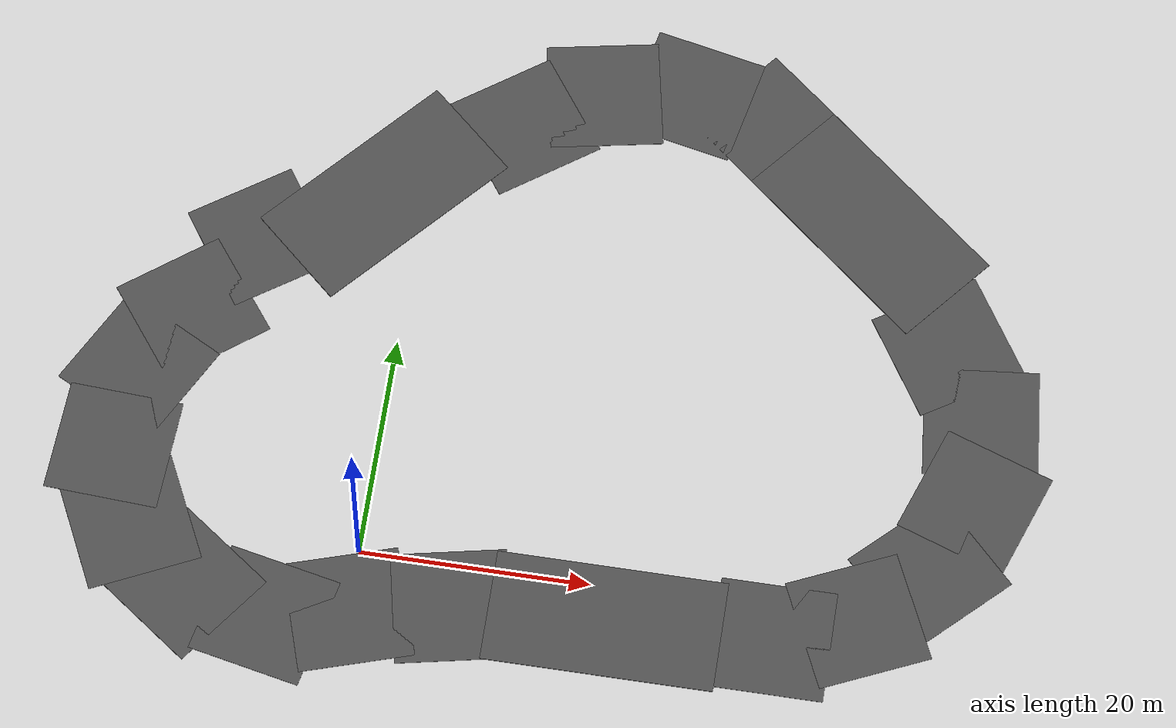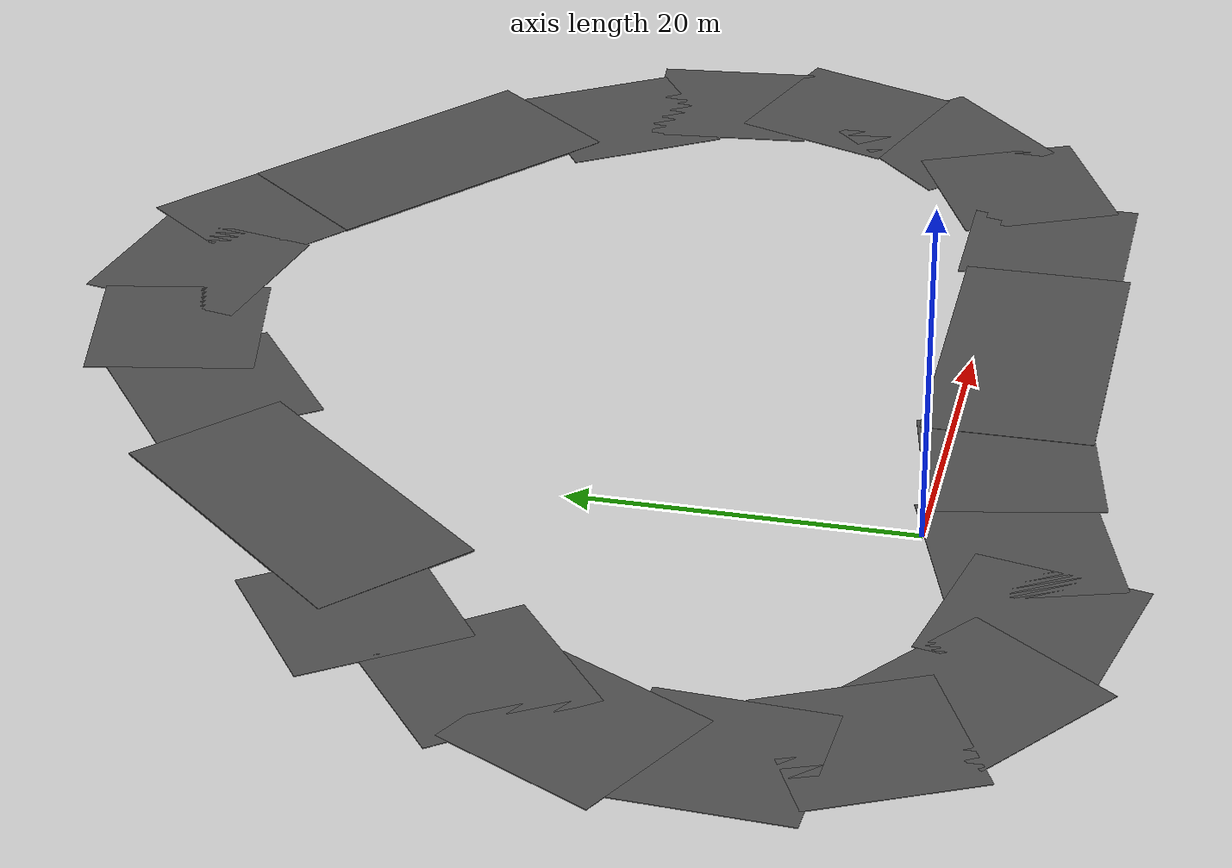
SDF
<sdf version="1.5">
 <world name="default">
  <light name="sun" type="directional">
   <pose>0 0 10 0 -0 0</pose>
   <diffuse>0.8 0.8 0.8 1</diffuse>
   <specular>0.2 0.2 0.2 1</specular>
   <attenuation>
    <range>1000</range>
    <constant>0.9</constant>
    <linear>0.01</linear>
    <quadratic>0.001</quadratic>
   </attenuation>
   <direction>-0.5 0.1 -0.9</direction>
  </light>
  <model name="ground_plane">
   <static>1</static>
   <link name="link">
    <collision name="collision">
     <geometry><plane><normal>0 0 1</normal><size>100 100</size></plane></geometry>
     <surface>
      <contact><collide_bitmask>65535</collide_bitmask></contact>
      <friction><ode><mu>100</mu><mu2>50</mu2></ode></friction>
     </surface>
    </collision>
    <visual name="visual">
     <cast_shadows>0</cast_shadows>
     <geometry><plane><normal>0 0 1</normal><size>100 100</size></plane></geometry>
     <material>
      <script><uri>file://media/materials/scripts/gazebo.material</uri><name>Gazebo/Grey</name></script>
     </material>
    </visual>
   </link>
  </model>
  <physics name="default_physics" default="0" type="ode">
   <max_step_size>0.001</max_step_size>
   <real_time_factor>1</real_time_factor>
   <real_time_update_rate>1000</real_time_update_rate>
   <gravity>0 0 -9.8</gravity>
   <magnetic_field>6e-06 2.3e-05 -4.2e-05</magnetic_field>
  </physics>
  <scene><ambient>0.4 0.4 0.4 1</ambient><background>0.7 0.7 0.7 1</background><shadows>1</shadows></scene>
  <audio><device>default</device></audio>
  <spherical_coordinates>
   <surface_model>EARTH_WGS84</surface_model>
   <latitude_deg>0</latitude_deg>
   <longitude_deg>0</longitude_deg>
   <elevation>0</elevation>
   <heading_deg>0</heading_deg>
  </spherical_coordinates>
  <model name="curved_road_4_0">
   <static>1</static>
   <link name="link">
    <collision name="collision"><geometry><box><size>20 10 0.1</size></box></geometry></collision>
    <visual name="visual">
     <cast_shadows>0</cast_shadows>
     <geometry><box><size>20 10 0.1</size></box></geometry>
     <material>
      <script>
       <uri>model://curved_road_4/materials/scripts</uri>
       <uri>model://curved_road_4/materials/textures</uri>
       <name>curved_road_4</name>
      </script>
     </material>
    </visual>
   </link>
   <pose>21.6759 -3.07883 0 0 -0 0</pose>
  </model>
  <model name="curved_road">
   <static>1</static>
   <link name="link">
    <collision name="collision"><geometry><box><size>10 10 0.05</size></box></geometry></collision>
    <visual name="visual">
     <cast_shadows>0</cast_shadows>
     <geometry><box><size>10 10 0.05</size></box></geometry>
     <material>
      <script>
       <uri>model://curved_road/materials/scripts</uri>
       <uri>model://curved_road/materials/textures</uri>
       <name>curved_road</name>
      </script>
     </material>
    </visual>
   </link>
   <pose>36 -2.59961 0 0 -0 0</pose>
  </model>
  <model name="curved_road_4_1">
   <static>1</static>
   <link name="link">
    <collision name="collision"><geometry><box><size>20 10 0.1</size></box></geometry></collision>
    <visual name="visual">
     <cast_shadows>0</cast_shadows>
     <geometry><box><size>20 10 0.1</size></box></geometry>
     <material>
      <script>
       <uri>model://curved_road_4/materials/scripts</uri>
       <uri>model://curved_road_4/materials/textures</uri>
       <name>curved_road_4</name>
      </script>
     </material>
    </visual>
   </link>
   <pose>39.1891 37.8303 0 0 0 -0.691738</pose>
  </model>
  <model name="curved_road_0">
   <static>1</static>
   <link name="link">
    <collision name="collision"><geometry><box><size>10 10 0.05</size></box></geometry></collision>
    <visual name="visual">
     <cast_shadows>0</cast_shadows>
     <geometry><box><size>10 10 0.05</size></box></geometry>
     <material>
      <script>
       <uri>model://curved_road/materials/scripts</uri>
       <uri>model://curved_road/materials/textures</uri>
       <name>curved_road</name>
      </script>
     </material>
    </visual>
   </link>
   <pose>43.0275 0.196222 0 0 -0 0.428357</pose>
  </model>
  <model name="curved_road_1">
   <static>1</static>
   <link name="link">
    <collision name="collision"><geometry><box><size>10 10 0.05</size></box></geometry></collision>
    <visual name="visual">
     <cast_shadows>0</cast_shadows>
     <geometry><box><size>10 10 0.05</size></box></geometry>
     <material>
      <script>
       <uri>model://curved_road/materials/scripts</uri>
       <uri>model://curved_road/materials/textures</uri>
       <name>curved_road</name>
      </script>
     </material>
    </visual>
   </link>
   <pose>48.4883 5.62534 0 0 -0 0.773568</pose>
  </model>
  <model name="curved_road_5">
   <static>1</static>
   <link name="link">
    <collision name="collision"><geometry><box><size>10 10 0.05</size></box></geometry></collision>
    <visual name="visual">
     <cast_shadows>0</cast_shadows>
     <geometry><box><size>10 10 0.05</size></box></geometry>
     <material>
      <script>
       <uri>model://curved_road/materials/scripts</uri>
       <uri>model://curved_road/materials/textures</uri>
       <name>curved_road</name>
      </script>
     </material>
    </visual>
   </link>
   <pose>51.5505 12.6244 0 0 -0 1.23352</pose>
  </model>
  <model name="curved_road_6">
   <static>1</static>
   <link name="link">
    <collision name="collision"><geometry><box><size>10 10 0.05</size></box></geometry></collision>
    <visual name="visual">
     <cast_shadows>0</cast_shadows>
     <geometry><box><size>10 10 0.05</size></box></geometry>
     <material>
      <script>
       <uri>model://curved_road/materials/scripts</uri>
       <uri>model://curved_road/materials/textures</uri>
       <name>curved_road</name>
      </script>
     </material>
    </visual>
   </link>
   <pose>51.1673 20.1299 0 0 -0 1.67198</pose>
  </model>
  <model name="curved_road_7">
   <static>1</static>
   <link name="link">
    <collision name="collision"><geometry><box><size>10 10 0.05</size></box></geometry></collision>
    <visual name="visual">
     <cast_shadows>0</cast_shadows>
     <geometry><box><size>10 10 0.05</size></box></geometry>
     <material>
      <script>
       <uri>model://curved_road/materials/scripts</uri>
       <uri>model://curved_road/materials/textures</uri>
       <name>curved_road</name>
      </script>
     </material>
    </visual>
   </link>
   <pose>47.4445 26.9404 0 0 -0 2.13415</pose>
  </model>
  <model name="curved_road_8">
   <static>1</static>
   <link name="link">
    <collision name="collision"><geometry><box><size>10 10 0.05</size></box></geometry></collision>
    <visual name="visual">
     <cast_shadows>0</cast_shadows>
     <geometry><box><size>10 10 0.05</size></box></geometry>
     <material>
      <script>
       <uri>model://curved_road/materials/scripts</uri>
       <uri>model://curved_road/materials/textures</uri>
       <name>curved_road</name>
      </script>
     </material>
    </visual>
   </link>
   <pose>29.4939 45.8757 0 0 -0 2.45445</pose>
  </model>
  <model name="curved_road_9">
   <static>1</static>
   <link name="link">
    <collision name="collision"><geometry><box><size>10 10 0.05</size></box></geometry></collision>
    <visual name="visual">
     <cast_shadows>0</cast_shadows>
     <geometry><box><size>10 10 0.05</size></box></geometry>
     <material>
      <script>
       <uri>model://curved_road/materials/scripts</uri>
       <uri>model://curved_road/materials/textures</uri>
       <name>curved_road</name>
      </script>
     </material>
    </visual>
   </link>
   <pose>22.0497 47.9981 0 0 -0 2.93568</pose>
  </model>
  <model name="curved_road_10">
   <static>1</static>
   <link name="link">
    <collision name="collision"><geometry><box><size>10 10 0.05</size></box></geometry></collision>
    <visual name="visual">
     <cast_shadows>0</cast_shadows>
     <geometry><box><size>10 10 0.05</size></box></geometry>
     <material>
      <script>
       <uri>model://curved_road/materials/scripts</uri>
       <uri>model://curved_road/materials/textures</uri>
       <name>curved_road</name>
      </script>
     </material>
    </visual>
   </link>
   <pose>14.2172 46.8196 0 0 0 -2.95461</pose>
  </model>
  <model name="curved_road_11">
   <static>1</static>
   <link name="link">
    <collision name="collision"><geometry><box><size>10 10 0.05</size></box></geometry></collision>
    <visual name="visual">
     <cast_shadows>0</cast_shadows>
     <geometry><box><size>10 10 0.05</size></box></geometry>
     <material>
      <script>
       <uri>model://curved_road/materials/scripts</uri>
       <uri>model://curved_road/materials/textures</uri>
       <name>curved_road</name>
      </script>
     </material>
    </visual>
   </link>
   <pose>7.63928 42.6307 0 0 0 -2.52155</pose>
  </model>
  <model name="curved_road_4_3">
   <static>1</static>
   <link name="link">
    <collision name="collision"><geometry><box><size>20 10 0.1</size></box></geometry></collision>
    <visual name="visual">
     <cast_shadows>0</cast_shadows>
     <geometry><box><size>20 10 0.1</size></box></geometry>
     <material>
      <script>
       <uri>model://curved_road_4/materials/scripts</uri>
       <uri>model://curved_road_4/materials/textures</uri>
       <name>curved_road_4</name>
      </script>
     </material>
    </visual>
   </link>
   <pose>-3.58671 34.2792 0 0 -0 0.839057</pose>
  </model>
  <model name="curved_road_12">
   <static>1</static>
   <link name="link">
    <collision name="collision"><geometry><box><size>10 10 0.05</size></box></geometry></collision>
    <visual name="visual">
     <cast_shadows>0</cast_shadows>
     <geometry><box><size>10 10 0.05</size></box></geometry>
     <material>
      <script>
       <uri>model://curved_road/materials/scripts</uri>
       <uri>model://curved_road/materials/textures</uri>
       <name>curved_road</name>
      </script>
     </material>
    </visual>
   </link>
   <pose>-21.9059 14.4831 0 0 0 -2.05479</pose>
  </model>
  <model name="curved_road_13">
   <static>1</static>
   <link name="link">
    <collision name="collision"><geometry><box><size>10 10 0.05</size></box></geometry></collision>
    <visual name="visual">
     <cast_shadows>0</cast_shadows>
     <geometry><box><size>10 10 0.05</size></box></geometry>
     <material>
      <script>
       <uri>model://curved_road/materials/scripts</uri>
       <uri>model://curved_road/materials/textures</uri>
       <name>curved_road</name>
      </script>
     </material>
    </visual>
   </link>
   <pose>-18.2437 20.5917 0 0 0 -2.49124</pose>
  </model>
  <model name="curved_road_14">
   <static>1</static>
   <link name="link">
    <collision name="collision"><geometry><box><size>10 10 0.05</size></box></geometry></collision>
    <visual name="visual">
     <cast_shadows>0</cast_shadows>
     <geometry><box><size>10 10 0.05</size></box></geometry>
     <material>
      <script>
       <uri>model://curved_road/materials/scripts</uri>
       <uri>model://curved_road/materials/textures</uri>
       <name>curved_road</name>
      </script>
     </material>
    </visual>
   </link>
   <pose>-22.6952 6.68699 0 0 0 -1.62627</pose>
  </model>
  <model name="curved_road_15">
   <static>1</static>
   <link name="link">
    <collision name="collision"><geometry><box><size>10 10 0.05</size></box></geometry></collision>
    <visual name="visual">
     <cast_shadows>0</cast_shadows>
     <geometry><box><size>10 10 0.05</size></box></geometry>
     <material>
      <script>
       <uri>model://curved_road/materials/scripts</uri>
       <uri>model://curved_road/materials/textures</uri>
       <name>curved_road</name>
      </script>
     </material>
    </visual>
   </link>
   <pose>-19.9538 -0.197827 0 0 0 -1.12331</pose>
  </model>
  <model name="curved_road_16">
   <static>1</static>
   <link name="link">
    <collision name="collision"><geometry><box><size>10 10 0.05</size></box></geometry></collision>
    <visual name="visual">
     <cast_shadows>0</cast_shadows>
     <geometry><box><size>10 10 0.05</size></box></geometry>
     <material>
      <script>
       <uri>model://curved_road/materials/scripts</uri>
       <uri>model://curved_road/materials/textures</uri>
       <name>curved_road</name>
      </script>
     </material>
    </visual>
   </link>
   <pose>-14.3694 -5.03343 0 0 0 -0.630209</pose>
  </model>
  <model name="curved_road_4_2">
   <static>1</static>
   <link name="link">
    <collision name="collision"><geometry><box><size>10 10 0.05</size></box></geometry></collision>
    <visual name="visual">
     <cast_shadows>0</cast_shadows>
     <geometry><box><size>10 10 0.05</size></box></geometry>
     <material>
      <script>
       <uri>model://curved_road/materials/scripts</uri>
       <uri>model://curved_road/materials/textures</uri>
       <name>curved_road</name>
      </script>
     </material>
    </visual>
   </link>
   <pose>-7.04695 -6.95137 0 0 0 -0.204463</pose>
  </model>
  <model name="curved_road_17">
   <static>1</static>
   <link name="link">
    <collision name="collision"><geometry><box><size>10 10 0.05</size></box></geometry></collision>
    <visual name="visual">
     <cast_shadows>0</cast_shadows>
     <geometry><box><size>10 10 0.05</size></box></geometry>
     <material>
      <script>
       <uri>model://curved_road/materials/scripts</uri>
       <uri>model://curved_road/materials/textures</uri>
       <name>curved_road</name>
      </script>
     </material>
    </visual>
   </link>
   <pose>-0.065743 -5.35891 0 0 -0 0.308134</pose>
  </model>
  <model name="curved_road_18">
   <static>1</static>
   <link name="link">
    <collision name="collision"><geometry><box><size>10 10 0.05</size></box></geometry></collision>
    <visual name="visual">
     <cast_shadows>0</cast_shadows>
     <geometry><box><size>10 10 0.05</size></box></geometry>
     <material>
      <script>
       <uri>model://curved_road/materials/scripts</uri>
       <uri>model://curved_road/materials/textures</uri>
       <name>curved_road</name>
      </script>
     </material>
    </visual>
   </link>
   <pose>8.52076 -3.72439 0 0 0 -2.93868</pose>
  </model>
  <model name="curved_road_19">
   <static>1</static>
   <link name="link">
    <collision name="collision"><geometry><box><size>10 10 0.05</size></box></geometry></collision>
    <visual name="visual">
     <cast_shadows>0</cast_shadows>
     <geometry><box><size>10 10 0.05</size></box></geometry>
     <material>
      <script>
       <uri>model://curved_road/materials/scripts</uri>
       <uri>model://curved_road/materials/textures</uri>
       <name>curved_road</name>
      </script>
     </material>
    </visual>
   </link>
   <pose>-13.4274 28.3824 0 0 -0 0.603269</pose>
  </model>
 </world>
</sdf>
